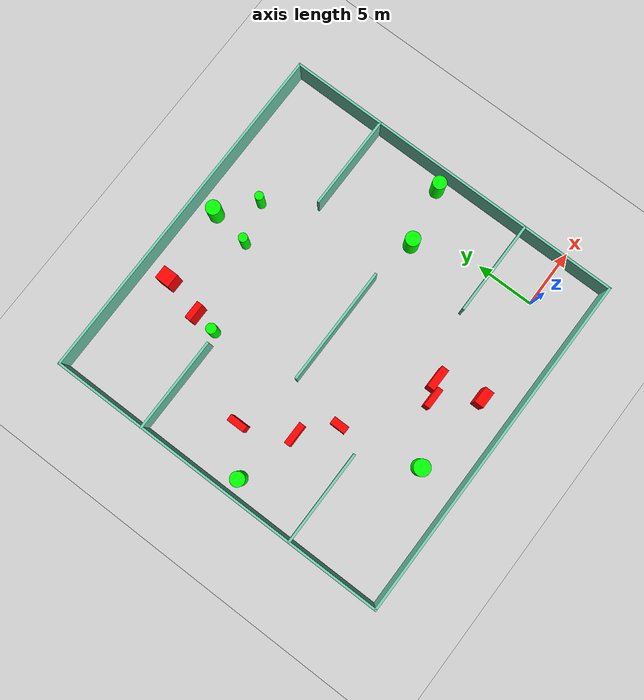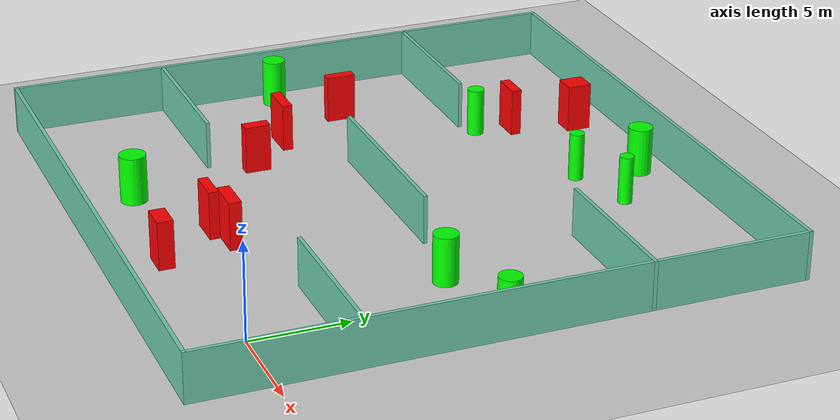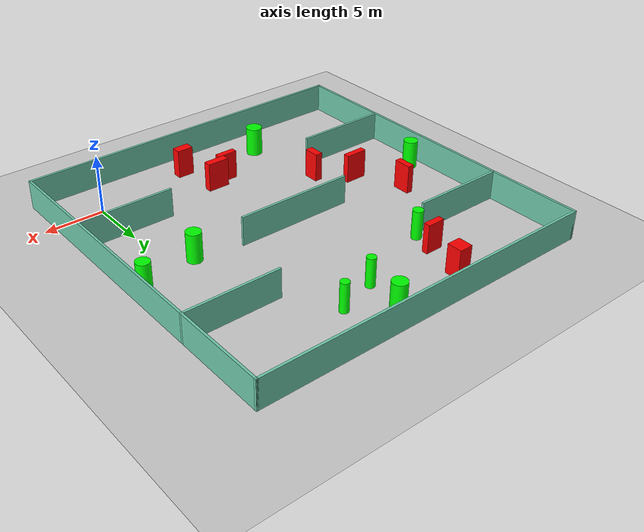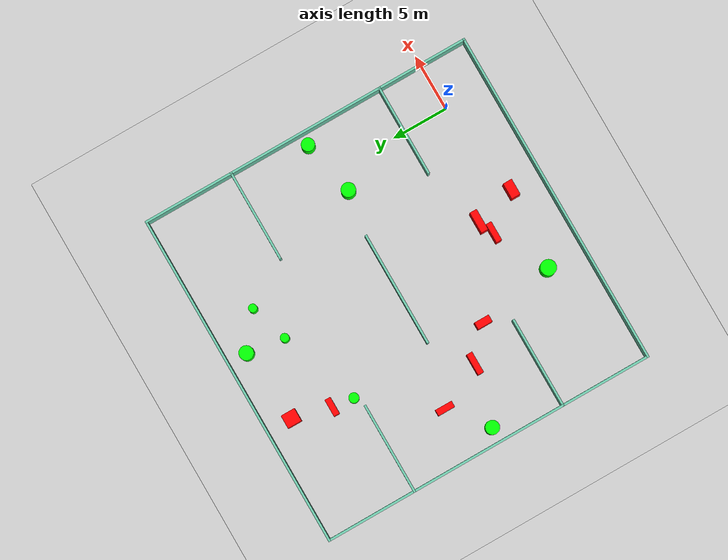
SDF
<sdf version="1.7">
 <world name="default">
  <light name="sun" type="directional">
   <pose>0 0 10 0 -0 0</pose>
   <diffuse>0.8 0.8 0.8 1</diffuse>
   <specular>0.2 0.2 0.2 1</specular>
   <attenuation>
    <range>1000</range>
    <constant>0.9</constant>
    <linear>0.01</linear>
    <quadratic>0.001</quadratic>
   </attenuation>
   <direction>-0.5 0.1 -0.9</direction>
   <spot><inner_angle>0</inner_angle><outer_angle>0</outer_angle><falloff>0</falloff></spot>
  </light>
  <model name="ground_plane">
   <static>1</static>
   <link name="link">
    <collision name="collision">
     <geometry><plane><normal>0 0 1</normal><size>100 100</size></plane></geometry>
     <surface>
      <contact><collide_bitmask>65535</collide_bitmask></contact>
      <friction><ode><mu>100</mu><mu2>50</mu2></ode></friction>
     </surface>
    </collision>
    <visual name="visual">
     <cast_shadows>0</cast_shadows>
     <geometry><plane><normal>0 0 1</normal><size>100 100</size></plane></geometry>
     <material>
      <script><uri>file://media/materials/scripts/gazebo.material</uri><name>Gazebo/Grey</name></script>
     </material>
    </visual>
   </link>
  </model>
  <gravity>0 0 -9.8</gravity>
  <magnetic_field>6e-06 2.3e-05 -4.2e-05</magnetic_field>
  <atmosphere type="adiabatic"/>
  <physics type="ode">
   <max_step_size>0.001</max_step_size>
   <real_time_factor>1</real_time_factor>
   <real_time_update_rate>1000</real_time_update_rate>
  </physics>
  <scene><ambient>0.4 0.4 0.4 1</ambient><background>0.7 0.7 0.7 1</background><shadows>1</shadows></scene>
  <spherical_coordinates>
   <surface_model>EARTH_WGS84</surface_model>
   <latitude_deg>0</latitude_deg>
   <longitude_deg>0</longitude_deg>
   <elevation>0</elevation>
   <heading_deg>0</heading_deg>
  </spherical_coordinates>
  <model name="my_base_walls">
   <link name="Wall_10">
    <collision name="Wall_10_Collision">
     <geometry><box><size>8.2 0.2 2.5</size></box></geometry>
     <pose>0 0 1.25 0 -0 0</pose>
    </collision>
    <visual name="Wall_10_Visual">
     <pose>0 0 1.25 0 -0 0</pose>
     <geometry><box><size>8.2 0.2 2.5</size></box></geometry>
     <material>
      <script><uri>file://media/materials/scripts/gazebo.material</uri><name>Gazebo/Grey</name></script>
      <ambient>0.435294 0.796078 0.67451 1</ambient>
     </material>
     <meta><layer>0</layer></meta>
    </visual>
    <pose>-11 -7 0 0 -0 0</pose>
   </link>
   <link name="Wall_12">
    <collision name="Wall_12_Collision">
     <geometry><box><size>8.2 0.2 2.5</size></box></geometry>
     <pose>0 0 1.25 0 -0 0</pose>
    </collision>
    <visual name="Wall_12_Visual">
     <pose>0 0 1.25 0 -0 0</pose>
     <geometry><box><size>8.2 0.2 2.5</size></box></geometry>
     <material>
      <script><uri>file://media/materials/scripts/gazebo.material</uri><name>Gazebo/Grey</name></script>
      <ambient>0.435294 0.796078 0.67451 1</ambient>
     </material>
     <meta><layer>0</layer></meta>
    </visual>
    <pose>-11 7 0 0 -0 0</pose>
   </link>
   <link name="Wall_14">
    <collision name="Wall_14_Collision">
     <geometry><box><size>8.2 0.2 2.5</size></box></geometry>
     <pose>0 0 1.25 0 -0 0</pose>
    </collision>
    <visual name="Wall_14_Visual">
     <pose>0 0 1.25 0 -0 0</pose>
     <geometry><box><size>8.2 0.2 2.5</size></box></geometry>
     <material>
      <script><uri>file://media/materials/scripts/gazebo.material</uri><name>Gazebo/Grey</name></script>
      <ambient>0.435294 0.796078 0.67451 1</ambient>
     </material>
     <meta><layer>0</layer></meta>
    </visual>
    <pose>11 7 0 0 -0 3.14159</pose>
   </link>
   <link name="Wall_16">
    <collision name="Wall_16_Collision">
     <geometry><box><size>10.2 0.2 2.5</size></box></geometry>
     <pose>0 0 1.25 0 -0 0</pose>
    </collision>
    <visual name="Wall_16_Visual">
     <pose>0 0 1.25 0 -0 0</pose>
     <geometry><box><size>10.2 0.2 2.5</size></box></geometry>
     <material>
      <script><uri>file://media/materials/scripts/gazebo.material</uri><name>Gazebo/Grey</name></script>
      <ambient>0.435294 0.796078 0.67451 1</ambient>
     </material>
     <meta><layer>0</layer></meta>
    </visual>
    <pose>0 0 0 0 -0 3.14159</pose>
   </link>
   <link name="Wall_2">
    <collision name="Wall_2_Collision">
     <geometry><box><size>30.2 0.2 2.5</size></box></geometry>
     <pose>0 0 1.25 0 -0 0</pose>
    </collision>
    <visual name="Wall_2_Visual">
     <pose>0 0 1.25 0 -0 0</pose>
     <geometry><box><size>30.2 0.2 2.5</size></box></geometry>
     <material>
      <script><uri>file://media/materials/scripts/gazebo.material</uri><name>Gazebo/Grey</name></script>
      <ambient>0.435294 0.796078 0.67451 1</ambient>
     </material>
     <meta><layer>0</layer></meta>
    </visual>
    <pose>0 -15 0 0 -0 3.14159</pose>
   </link>
   <link name="Wall_3">
    <collision name="Wall_3_Collision">
     <geometry><box><size>30.2 0.2 2.5</size></box></geometry>
     <pose>0 0 1.25 0 -0 0</pose>
    </collision>
    <visual name="Wall_3_Visual">
     <pose>0 0 1.25 0 -0 0</pose>
     <geometry><box><size>30.2 0.2 2.5</size></box></geometry>
     <material>
      <script><uri>file://media/materials/scripts/gazebo.material</uri><name>Gazebo/Grey</name></script>
      <ambient>0.435294 0.796078 0.67451 1</ambient>
     </material>
     <meta><layer>0</layer></meta>
    </visual>
    <pose>-15 0 0 0 -0 1.5708</pose>
   </link>
   <link name="Wall_4">
    <collision name="Wall_4_Collision">
     <geometry><box><size>30.2 0.2 2.5</size></box></geometry>
     <pose>0 0 1.25 0 -0 0</pose>
    </collision>
    <visual name="Wall_4_Visual">
     <pose>0 0 1.25 0 -0 0</pose>
     <geometry><box><size>30.2 0.2 2.5</size></box></geometry>
     <material>
      <script><uri>file://media/materials/scripts/gazebo.material</uri><name>Gazebo/Grey</name></script>
      <ambient>0.435294 0.796078 0.67451 1</ambient>
     </material>
     <meta><layer>0</layer></meta>
    </visual>
    <pose>0 15 0 0 -0 0</pose>
   </link>
   <link name="Wall_6">
    <collision name="Wall_6_Collision">
     <geometry><box><size>30.2 0.2 2.5</size></box></geometry>
     <pose>0 0 1.25 0 -0 0</pose>
    </collision>
    <visual name="Wall_6_Visual">
     <pose>0 0 1.25 0 -0 0</pose>
     <geometry><box><size>30.2 0.2 2.5</size></box></geometry>
     <material>
      <script><uri>file://media/materials/scripts/gazebo.material</uri><name>Gazebo/Grey</name></script>
      <ambient>0.435294 0.796078 0.67451 1</ambient>
     </material>
     <meta><layer>0</layer></meta>
    </visual>
    <pose>15 0 0 0 -0 1.5708</pose>
   </link>
   <link name="Wall_8">
    <collision name="Wall_8_Collision">
     <geometry><box><size>8.2 0.2 2.5</size></box></geometry>
     <pose>0 0 1.25 0 -0 0</pose>
    </collision>
    <visual name="Wall_8_Visual">
     <pose>0 0 1.25 0 -0 0</pose>
     <geometry><box><size>8.2 0.2 2.5</size></box></geometry>
     <material>
      <script><uri>file://media/materials/scripts/gazebo.material</uri><name>Gazebo/Grey</name></script>
      <ambient>0.435294 0.796078 0.67451 1</ambient>
     </material>
     <meta><layer>0</layer></meta>
    </visual>
    <pose>11 -7 0 0 -0 3.14159</pose>
   </link>
   <static>1</static>
   <pose>-11 11 0 0 -0 0</pose>
  </model>
  <model name="cylinder1">
   <static>1</static>
   <link name="link">
    <inertial>
     <mass>1</mass>
     <inertia><ixx>0.5</ixx><ixy>0</ixy><ixz>0</ixz><iyy>0.5</iyy><iyz>0</iyz><izz>1</izz></inertia>
    </inertial>
    <collision name="collision">
     <geometry><cylinder><radius>0.6252655198506156</radius><length>2.5</length></cylinder></geometry>
    </collision>
    <visual name="visual">
     <geometry><cylinder><radius>0.6252655198506156</radius><length>2.5</length></cylinder></geometry>
     <material>
      <ambient>0 1 0 1</ambient>
      <diffuse>0 1 0 1</diffuse>
      <specular>0.1 0.1 0.1 1</specular>
      <emissive>0 0 0 0</emissive>
     </material>
    </visual>
   </link>
   <pose>-1.97376229379827 10.367999754727666 1.25 0 0 0</pose>
  </model>
  <model name="cylinder2">
   <static>1</static>
   <link name="link">
    <inertial>
     <mass>1</mass>
     <inertia><ixx>0.5</ixx><ixy>0</ixy><ixz>0</ixz><iyy>0.5</iyy><iyz>0</iyz><izz>1</izz></inertia>
    </inertial>
    <collision name="collision">
     <geometry><cylinder><radius>0.6071354467008887</radius><length>2.5</length></cylinder></geometry>
    </collision>
    <visual name="visual">
     <geometry><cylinder><radius>0.6071354467008887</radius><length>2.5</length></cylinder></geometry>
     <material>
      <ambient>0 1 0 1</ambient>
      <diffuse>0 1 0 1</diffuse>
      <specular>0.1 0.1 0.1 1</specular>
      <emissive>0 0 0 0</emissive>
     </material>
    </visual>
   </link>
   <pose>-24.678805997625407 9.88434650400698 1.25 0 0 0</pose>
  </model>
  <model name="cylinder3">
   <static>1</static>
   <link name="link">
    <inertial>
     <mass>1</mass>
     <inertia><ixx>0.5</ixx><ixy>0</ixy><ixz>0</ixz><iyy>0.5</iyy><iyz>0</iyz><izz>1</izz></inertia>
    </inertial>
    <collision name="collision">
     <geometry><cylinder><radius>0.6860630613497256</radius><length>2.5</length></cylinder></geometry>
    </collision>
    <visual name="visual">
     <geometry><cylinder><radius>0.6860630613497256</radius><length>2.5</length></cylinder></geometry>
     <material>
      <ambient>0 1 0 1</ambient>
      <diffuse>0 1 0 1</diffuse>
      <specular>0.1 0.1 0.1 1</specular>
      <emissive>0 0 0 0</emissive>
     </material>
    </visual>
   </link>
   <pose>-15.658728683002671 -0.6146165656182445 1.25 0 0 0</pose>
  </model>
  <model name="cylinder4">
   <static>1</static>
   <link name="link">
    <inertial>
     <mass>1</mass>
     <inertia><ixx>0.5</ixx><ixy>0</ixy><ixz>0</ixz><iyy>0.5</iyy><iyz>0</iyz><izz>1</izz></inertia>
    </inertial>
    <collision name="collision">
     <geometry><cylinder><radius>0.3822744394378894</radius><length>2.5</length></cylinder></geometry>
    </collision>
    <visual name="visual">
     <geometry><cylinder><radius>0.3822744394378894</radius><length>2.5</length></cylinder></geometry>
     <material>
      <ambient>0 1 0 1</ambient>
      <diffuse>0 1 0 1</diffuse>
      <specular>0.1 0.1 0.1 1</specular>
      <emissive>0 0 0 0</emissive>
     </material>
    </visual>
   </link>
   <pose>-9.863416015779297 20.922819506666997 1.25 0 0 0</pose>
  </model>
  <model name="cylinder5">
   <static>1</static>
   <link name="link">
    <inertial>
     <mass>1</mass>
     <inertia><ixx>0.5</ixx><ixy>0</ixy><ixz>0</ixz><iyy>0.5</iyy><iyz>0</iyz><izz>1</izz></inertia>
    </inertial>
    <collision name="collision">
     <geometry><cylinder><radius>0.3657557891049516</radius><length>2.5</length></cylinder></geometry>
    </collision>
    <visual name="visual">
     <geometry><cylinder><radius>0.3657557891049516</radius><length>2.5</length></cylinder></geometry>
     <material>
      <ambient>0 1 0 1</ambient>
      <diffuse>0 1 0 1</diffuse>
      <specular>0.1 0.1 0.1 1</specular>
      <emissive>0 0 0 0</emissive>
     </material>
    </visual>
   </link>
   <pose>-6.4685126804258015 21.97255633422309 1.25 0 0 0</pose>
  </model>
  <model name="cylinder6">
   <static>1</static>
   <link name="link">
    <inertial>
     <mass>1</mass>
     <inertia><ixx>0.5</ixx><ixy>0</ixy><ixz>0</ixz><iyy>0.5</iyy><iyz>0</iyz><izz>1</izz></inertia>
    </inertial>
    <collision name="collision">
     <geometry><cylinder><radius>0.6231569984086531</radius><length>2.5</length></cylinder></geometry>
    </collision>
    <visual name="visual">
     <geometry><cylinder><radius>0.6231569984086531</radius><length>2.5</length></cylinder></geometry>
     <material>
      <ambient>0 1 0 1</ambient>
      <diffuse>0 1 0 1</diffuse>
      <specular>0.1 0.1 0.1 1</specular>
      <emissive>0 0 0 0</emissive>
     </material>
    </visual>
   </link>
   <pose>-9.375726416979308 24.25438917734352 1.25 0 0 0</pose>
  </model>
  <model name="cylinder7">
   <static>1</static>
   <link name="link">
    <inertial>
     <mass>1</mass>
     <inertia><ixx>0.5</ixx><ixy>0</ixy><ixz>0</ixz><iyy>0.5</iyy><iyz>0</iyz><izz>1</izz></inertia>
    </inertial>
    <collision name="collision">
     <geometry><cylinder><radius>0.43774354212846117</radius><length>2.5</length></cylinder></geometry>
    </collision>
    <visual name="visual">
     <geometry><cylinder><radius>0.43774354212846117</radius><length>2.5</length></cylinder></geometry>
     <material>
      <ambient>0 1 0 1</ambient>
      <diffuse>0 1 0 1</diffuse>
      <specular>0.1 0.1 0.1 1</specular>
      <emissive>0 0 0 0</emissive>
     </material>
    </visual>
   </link>
   <pose>-16.936845792336417 18.47346979713769 1.25 0 0 0</pose>
  </model>
  <model name="cylinder8">
   <static>1</static>
   <link name="link">
    <inertial>
     <mass>1</mass>
     <inertia><ixx>0.5</ixx><ixy>0</ixy><ixz>0</ixz><iyy>0.5</iyy><iyz>0</iyz><izz>1</izz></inertia>
    </inertial>
    <collision name="collision">
     <geometry><cylinder><radius>0.5775421166916941</radius><length>2.5</length></cylinder></geometry>
    </collision>
    <visual name="visual">
     <geometry><cylinder><radius>0.5775421166916941</radius><length>2.5</length></cylinder></geometry>
     <material>
      <ambient>0 1 0 1</ambient>
      <diffuse>0 1 0 1</diffuse>
      <specular>0.1 0.1 0.1 1</specular>
      <emissive>0 0 0 0</emissive>
     </material>
    </visual>
   </link>
   <pose>2.8958484828471924 11.384003073155007 1.25 0 0 0</pose>
  </model>
  <model name="box1">
   <static>1</static>
   <link name="link">
    <inertial>
     <mass>1</mass>
     <inertia><ixx>0.083</ixx><ixy>0</ixy><ixz>0</ixz><iyy>0.083</iyy><iyz>0</iyz><izz>0.083</izz></inertia>
    </inertial>
    <collision name="collision">
     <geometry><box><size>0.5572075360108698 1.5284824769012972 2.5</size></box></geometry>
    </collision>
    <visual name="visual">
     <geometry><box><size>0.5572075360108698 1.5284824769012972 2.5</size></box></geometry>
     <material>
      <ambient>1 0 0 1</ambient>
      <diffuse>1 0 0 1</diffuse>
      <specular>0.1 0.1 0.1 1</specular>
      <emissive>0 0 0 0</emissive>
     </material>
    </visual>
    <sensor name="my_contact" type="contact">
     <contact><collision>box_collision</collision><topic>__default_topic__</topic></contact>
    </sensor>
   </link>
   <pose>-21.40442240734422 12.461737050244796 1.25 0 0 0</pose>
  </model>
  <model name="box2">
   <static>1</static>
   <link name="link">
    <inertial>
     <mass>1</mass>
     <inertia><ixx>0.083</ixx><ixy>0</ixy><ixz>0</ixz><iyy>0.083</iyy><iyz>0</iyz><izz>0.083</izz></inertia>
    </inertial>
    <collision name="collision">
     <geometry><box><size>1.918318254658386 0.5253800023977621 2.5</size></box></geometry>
    </collision>
    <visual name="visual">
     <geometry><box><size>1.918318254658386 0.5253800023977621 2.5</size></box></geometry>
     <material>
      <ambient>1 0 0 1</ambient>
      <diffuse>1 0 0 1</diffuse>
      <specular>0.1 0.1 0.1 1</specular>
      <emissive>0 0 0 0</emissive>
     </material>
    </visual>
    <sensor name="my_contact" type="contact">
     <contact><collision>box_collision</collision><topic>__default_topic__</topic></contact>
    </sensor>
   </link>
   <pose>-19.451781251794515 8.499654030647115 1.25 0 0 0</pose>
  </model>
  <model name="box3">
   <static>1</static>
   <link name="link">
    <inertial>
     <mass>1</mass>
     <inertia><ixx>0.083</ixx><ixy>0</ixy><ixz>0</ixz><iyy>0.083</iyy><iyz>0</iyz><izz>0.083</izz></inertia>
    </inertial>
    <collision name="collision">
     <geometry><box><size>1.5423117447982193 0.528296871135908 2.5</size></box></geometry>
    </collision>
    <visual name="visual">
     <geometry><box><size>1.5423117447982193 0.528296871135908 2.5</size></box></geometry>
     <material>
      <ambient>1 0 0 1</ambient>
      <diffuse>1 0 0 1</diffuse>
      <specular>0.1 0.1 0.1 1</specular>
      <emissive>0 0 0 0</emissive>
     </material>
    </visual>
    <sensor name="my_contact" type="contact">
     <contact><collision>box_collision</collision><topic>__default_topic__</topic></contact>
    </sensor>
   </link>
   <pose>-16.6801199939854 20.37184193580205 1.25 0 0 0</pose>
  </model>
  <model name="box4">
   <static>1</static>
   <link name="link">
    <inertial>
     <mass>1</mass>
     <inertia><ixx>0.083</ixx><ixy>0</ixy><ixz>0</ixz><iyy>0.083</iyy><iyz>0</iyz><izz>0.083</izz></inertia>
    </inertial>
    <collision name="collision">
     <geometry><box><size>1.7328431076861146 0.5081479509875222 2.5</size></box></geometry>
    </collision>
    <visual name="visual">
     <geometry><box><size>1.7328431076861146 0.5081479509875222 2.5</size></box></geometry>
     <material>
      <ambient>1 0 0 1</ambient>
      <diffuse>1 0 0 1</diffuse>
      <specular>0.1 0.1 0.1 1</specular>
      <emissive>0 0 0 0</emissive>
     </material>
    </visual>
    <sensor name="my_contact" type="contact">
     <contact><collision>box_collision</collision><topic>__default_topic__</topic></contact>
    </sensor>
   </link>
   <pose>-10.918626641561747 1.7994557380468432 1.25 0 0 0</pose>
  </model>
  <model name="box5">
   <static>1</static>
   <link name="link">
    <inertial>
     <mass>1</mass>
     <inertia><ixx>0.083</ixx><ixy>0</ixy><ixz>0</ixz><iyy>0.083</iyy><iyz>0</iyz><izz>0.083</izz></inertia>
    </inertial>
    <collision name="collision">
     <geometry><box><size>1.9016568241866976 0.6409469247676979 2.5</size></box></geometry>
    </collision>
    <visual name="visual">
     <geometry><box><size>1.9016568241866976 0.6409469247676979 2.5</size></box></geometry>
     <material>
      <ambient>1 0 0 1</ambient>
      <diffuse>1 0 0 1</diffuse>
      <specular>0.1 0.1 0.1 1</specular>
      <emissive>0 0 0 0</emissive>
     </material>
    </visual>
    <sensor name="my_contact" type="contact">
     <contact><collision>box_collision</collision><topic>__default_topic__</topic></contact>
    </sensor>
   </link>
   <pose>-9.528435362382055 2.402114953779104 1.25 0 0 0</pose>
  </model>
  <model name="box6">
   <static>1</static>
   <link name="link">
    <inertial>
     <mass>1</mass>
     <inertia><ixx>0.083</ixx><ixy>0</ixy><ixz>0</ixz><iyy>0.083</iyy><iyz>0</iyz><izz>0.083</izz></inertia>
    </inertial>
    <collision name="collision">
     <geometry><box><size>1.426824344789996 0.8060475715399888 2.5</size></box></geometry>
    </collision>
    <visual name="visual">
     <geometry><box><size>1.426824344789996 0.8060475715399888 2.5</size></box></geometry>
     <material>
      <ambient>1 0 0 1</ambient>
      <diffuse>1 0 0 1</diffuse>
      <specular>0.1 0.1 0.1 1</specular>
      <emissive>0 0 0 0</emissive>
     </material>
    </visual>
    <sensor name="my_contact" type="contact">
     <contact><collision>box_collision</collision><topic>__default_topic__</topic></contact>
    </sensor>
   </link>
   <pose>-8.58753163142527 -1.2413149313929597 1.25 0 0 0</pose>
  </model>
  <model name="box7">
   <static>1</static>
   <link name="link">
    <inertial>
     <mass>1</mass>
     <inertia><ixx>0.083</ixx><ixy>0</ixy><ixz>0</ixz><iyy>0.083</iyy><iyz>0</iyz><izz>0.083</izz></inertia>
    </inertial>
    <collision name="collision">
     <geometry><box><size>1.1819875000425224 1.2637246732488947 2.5</size></box></geometry>
    </collision>
    <visual name="visual">
     <geometry><box><size>1.1819875000425224 1.2637246732488947 2.5</size></box></geometry>
     <material>
      <ambient>1 0 0 1</ambient>
      <diffuse>1 0 0 1</diffuse>
      <specular>0.1 0.1 0.1 1</specular>
      <emissive>0 0 0 0</emissive>
     </material>
    </visual>
    <sensor name="my_contact" type="contact">
     <contact><collision>box_collision</collision><topic>__default_topic__</topic></contact>
    </sensor>
   </link>
   <pose>-15.832778995338789 23.73308355839514 1.25 0 0 0</pose>
  </model>
  <model name="box8">
   <static>1</static>
   <link name="link">
    <inertial>
     <mass>1</mass>
     <inertia><ixx>0.083</ixx><ixy>0</ixy><ixz>0</ixz><iyy>0.083</iyy><iyz>0</iyz><izz>0.083</izz></inertia>
    </inertial>
    <collision name="collision">
     <geometry><box><size>0.6424269312134635 1.339113699686421 2.5</size></box></geometry>
    </collision>
    <visual name="visual">
     <geometry><box><size>0.6424269312134635 1.339113699686421 2.5</size></box></geometry>
     <material>
      <ambient>1 0 0 1</ambient>
      <diffuse>1 0 0 1</diffuse>
      <specular>0.1 0.1 0.1 1</specular>
      <emissive>0 0 0 0</emissive>
     </material>
    </visual>
    <sensor name="my_contact" type="contact">
     <contact><collision>box_collision</collision><topic>__default_topic__</topic></contact>
    </sensor>
   </link>
   <pose>-16.867685999890966 6.223695825212312 1.25 0 0 0</pose>
  </model>
 </world>
</sdf>
